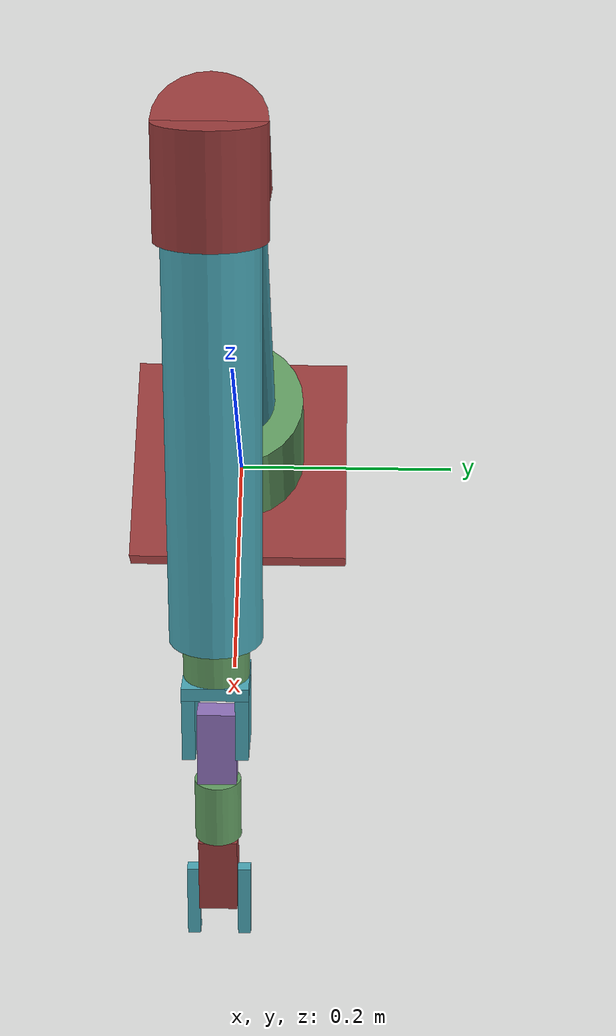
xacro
<?xml version="1.0"?>
<robot name="custom_rpp_zyz_robot" xmlns:xacro="http://www.ros.org/wiki/xacro">

  <xacro:include filename="common_properties.xacro"/>
  <xacro:include filename="robot_arm_gazebo.xacro"/>

  <xacro:property name="arm_length" value="0.3"/>
  <xacro:property name="arm_radius" value="0.035"/>

  <link name="world"/>

  <joint name="world_to_base" type="fixed">
    <parent link="world"/>
    <child link="base_link"/>
    <origin xyz="0 0 0" rpy="0 0 0"/>
  </joint>

  <!-- Base plate -->
  <link name="base_link">
    <visual>
      <origin xyz="0 0 0.01" rpy="0 0 0"/>
      <geometry>
        <box size="0.20 0.20 0.02"/>
      </geometry>
      <material name="dark_gray"/>
    </visual>
    <collision>
      <origin xyz="0 0 0.01" rpy="0 0 0"/>
      <geometry>
        <box size="0.20 0.20 0.02"/>
      </geometry>
    </collision>
    <xacro:box_inertia m="1.0" x="0.20" y="0.20" z="0.02" o_xyz="0 0 0.01" o_rpy="0 0 0"/>
  </link>

  <!-- Rotating motor base -->
  <link name="base_motor_link">
    <visual>
      <origin xyz="0 0 ${arm_length* 0.2}" rpy="0 0 0"/>
      <geometry>
        <cylinder radius="${arm_radius*(12/7)}" length="${arm_length* 0.4}"/>
      </geometry>
      <material name="orange"/>
    </visual>
    <collision>
      <origin xyz="0 0 ${arm_length* 0.2}" rpy="0 0 0"/>
      <geometry>
        <cylinder radius="${arm_radius*(12/7)}" length="${arm_length* 0.4}"/>
      </geometry>
    </collision>
    <xacro:cylinder_inertia m="1.0" r="${arm_radius*(12/7)}" h="${arm_length* 0.4}" o_xyz="0 0 ${arm_length* 0.2}" o_rpy="0 0 0"/>
  </link>

  <joint name="joint_base_yaw" type="revolute">
    <parent link="base_link"/>
    <child link="base_motor_link"/>
    <origin xyz="0 0 0.02" rpy="0 0 0"/>
    <axis xyz="0 0 1"/>
    <limit lower="${-pi}" upper="${pi}" effort="120" velocity="1.0"/>
    <dynamics damping="1.0" friction="0.2"/>
  </joint>

  <!-- Arm 1 outer tube -->

  <xacro:macro name="outer_arm" params="parfix">
    <link name="${parfix}_outer_link">
      <visual>
        <origin xyz="0 0 ${arm_length* 0.5}" rpy="0 0 0"/>
        <geometry>
          <cylinder radius="${arm_radius}" length="${arm_length}"/>
      </geometry>
        <material name="gray"/>
      </visual>
      <collision>
        <origin xyz="0 0 ${arm_length* 0.5}" rpy="0 0 0"/>
        <geometry>
          <cylinder radius="${arm_radius}" length="${arm_length}"/>
        </geometry>
      </collision>
      <xacro:cylinder_tube_inertia m="1.0" r_outer="${arm_radius}" r_inner="${arm_radius* (5/7)}" h="${arm_length}" o_xyz="0 0 ${arm_length* 0.5}" o_rpy="0 0 0"/>
    </link>
  </xacro:macro>

  <xacro:outer_arm parfix="arm1"/>

  <joint name="joint_arm1_outer_fixed" type="fixed">
    <parent link="base_motor_link"/>
    <child link="arm1_outer_link"/>
    <origin xyz="0 0 ${arm_length* 0.4}" rpy="0 0 0"/>
  </joint>

  <!-- Arm 1 inner telescopic rod -->
  <!-- Moves along Z -->
  <link name="arm1_inner_link">
    <visual>
      <origin xyz="0 0 ${arm_length* 0.5}" rpy="0 0 0"/>
      <geometry>
        <cylinder radius="${arm_radius* (5/7)}" length="${arm_length}"/>
      </geometry>
      <material name="blue"/>
    </visual>
    <collision>
      <origin xyz="0 0 ${arm_length* 0.5}" rpy="0 0 0"/>
      <geometry>
        <cylinder radius="${arm_radius* (5/7)}" length="${arm_length}"/>
      </geometry>
    </collision>
    <xacro:cylinder_tube_inertia m="1.0" r_outer="${arm_radius* (5/7)}" r_inner="${arm_radius* (4/7)}" h="${arm_length}" o_xyz="0 0 ${arm_length* 0.5}" o_rpy="0 0 0"/>
  </link>

  <joint name="joint_arm1_prismatic" type="prismatic">
    <parent link="arm1_outer_link"/>
    <child link="arm1_inner_link"/>
    <origin xyz="0 0 ${arm_length/10}" rpy="0 0 0"/>
    <axis xyz="0 0 1"/>
    <limit lower="0.0" upper="${arm_length* 0.85}" effort="400" velocity="0.10"/>
    <dynamics damping="8.0" friction="2.0"/>
  </joint>

  <!-- Fixed tilt -->
  <!-- Part 1/2-->
  <link name="tilt_link">
    <visual>
      <origin xyz="0 0 ${arm_length* 2/15}" rpy="0 0 0"/>
      <geometry>
        <cylinder radius="${arm_radius* 8/7}" length="${arm_length* 4/15}"/>
      </geometry>
      <material name="dark_gray"/>
    </visual>
    <collision>
      <origin xyz="0 0 ${arm_length* 2/15}" rpy="0 0 0"/>
      <geometry>
        <cylinder radius="${arm_radius* 8/7}" length="${arm_length* 4/15}"/>
      </geometry>
    </collision>
    <xacro:cylinder_inertia m="1.0" r="${arm_radius* 8/7}" h="${arm_length* 4/15}" o_xyz="0 0 ${arm_length* 2/15}" o_rpy="0 0 0"/>
  </link>

  <joint name="joint_fixed_tilt" type="fixed">
    <parent link="arm1_inner_link"/>
    <child link="tilt_link"/>
    <origin xyz="0 0 ${arm_length}" rpy="0 0 0"/>
  </joint>

  <!-- Fixed tilt by 135 degrees downward -->
  <!-- We use rotation about Y, Part 2/2-->
  <link name="tilt_135_link">
    <visual>
      <origin xyz="0 0 ${arm_length* 2/15}" rpy="0 0 0"/>
      <geometry>
        <cylinder radius="${arm_radius* 8/7}" length="${arm_length* 4/15}"/>
      </geometry>
      <material name="dark_gray"/>
    </visual>
    <collision>
      <origin xyz="0 0 ${arm_length* 2/15}" rpy="0 0 0"/>
      <geometry>
        <cylinder radius="${arm_radius* 8/7}" length="${arm_length* 4/15}"/>
      </geometry>
    </collision>
    <xacro:cylinder_inertia m="1.0" r="${arm_radius* 8/7}" h="${arm_length* 4/15}" o_xyz="0 0 ${arm_length* 2/15}" o_rpy="0 0 0"/>
  </link>

  <joint name="joint_fixed_135deg" type="fixed">
    <parent link="tilt_link"/>
    <child link="tilt_135_link"/>
    <origin xyz="0  0 ${arm_length* 4/15}" rpy="0 ${pi/(4/3)} 0"/>
  </joint>

  <!-- Arm 2 outer tube -->
  <!-- Axis is now tilted with the frame -->
  <xacro:outer_arm parfix="arm2"/>

  <joint name="joint_arm2_outer_fixed" type="fixed">
    <parent link="tilt_135_link"/>
    <child link="arm2_outer_link"/>
    <origin xyz="0 0 ${arm_length* 4/15}" rpy="0 0 0"/>
  </joint>

  <!-- Arm 2 inner telescopic rod -->
  <!-- Moves along local Z of arm2 -->
  <link name="arm2_inner_link">
    <visual>
      <origin xyz="0 0 ${arm_length* 0.5}" rpy="0 0 0"/>
      <geometry>
        <cylinder radius="${arm_radius* (5/7)}" length="${arm_length}"/>
      </geometry>
      <material name="orange"/>
    </visual>
    <collision>
      <origin xyz="0 0 ${arm_length* 0.5}" rpy="0 0 0"/>
      <geometry>
        <cylinder radius="${arm_radius* (5/7)}" length="${arm_length}"/>
      </geometry>
    </collision>
    <xacro:cylinder_tube_inertia m="1.0" r_outer="${arm_radius* (5/7)}" r_inner="${arm_radius* (4/7)}" h="${arm_length}" o_xyz="0 0 ${arm_length* 0.5}" o_rpy="0 0 0"/>
  </link>

  <joint name="joint_arm2_prismatic" type="prismatic">
    <parent link="arm2_outer_link"/>
    <child link="arm2_inner_link"/>
    <origin xyz="0 0 ${arm_length/10}" rpy="0 0 0"/>
    <axis xyz="0 0 1"/>
    <limit lower="0.0" upper="${arm_length* 0.85}" effort="400" velocity="0.10"/>
    <dynamics damping="8.0" friction="2.0"/>
  </joint>

  <!-- Wrist Z1 1/3-->
  <link name="wrist_z1_base_link">
    <visual>
      <origin xyz="0 0 0.005" rpy="0 0 0"/>
      <geometry>
        <box size="0.05 0.05 0.01"/>
      </geometry>
      <material name="gray"/>
    </visual>
    <collision>
      <origin xyz="0 0 0.005" rpy="0 0 0"/>
      <geometry>
        <box size="0.05 0.05 0.01"/>
      </geometry>
    </collision>
    <xacro:box_inertia m="0.5" x="0.05" y="0.05" z="0.01" o_xyz="0 0 0.005" o_rpy="0 0 0"/>
  </link>

  <joint name="joint_wrist_z1" type="revolute">
    <parent link="arm2_inner_link"/>
    <child link="wrist_z1_base_link"/>
    <origin xyz="0 0 ${arm_length}" rpy="0 0 0"/>
    <axis xyz="0 0 1"/>
    <limit lower="${-pi}" upper="${pi}" effort="80" velocity="1.0"/>
    <dynamics damping="1.5" friction="0.2"/>
  </joint>

  <!-- Wrist left Z1 2/3-->
  <xacro:macro name="wrist_z1_side" params="side">
     <link name="wrist_z1_${side}_link">
        <visual>
          <origin xyz="0 0 0.025" rpy="0 0 0"/>
          <geometry>
            <box size="0.05 0.01 0.05"/>
          </geometry>
          <material name="gray"/>
        </visual>
        <collision>
          <origin xyz="0 0 0.025" rpy="0 0 0"/>
          <geometry>
            <box size="0.05 0.01 0.05"/>
          </geometry>
        </collision>
        <xacro:box_inertia m="0.5" x="0.05" y="0.01" z="0.05" o_xyz="0 0 0.025" o_rpy="0 0 0"/>
      </link>
  </xacro:macro>

  <xacro:wrist_z1_side side="left"/>

  <joint name="joint_wrist_left_z1" type="fixed">
    <parent link="wrist_z1_base_link"/>
    <child link="wrist_z1_left_link"/>
    <origin xyz="0 0.02 0.01" rpy="0 0 0"/>
  </joint>

  <!-- Wrist right Z1 3/3-->
  <xacro:wrist_z1_side side="right"/>

  <joint name="joint_wrist_right_z1" type="fixed">
    <parent link="wrist_z1_base_link"/>
    <child link="wrist_z1_right_link"/>
    <origin xyz="0 -0.02 0.01" rpy="0 0 0"/>
  </joint>

  <!-- Wrist Y -->
  <link name="wrist_y_link">
    <visual>
      <origin xyz="0 0 0.02" rpy="0 0 0"/>
      <geometry>
        <box size="0.02 0.03 0.06"/>
      </geometry>
      <material name="blue"/>
    </visual>
    <collision>
      <origin xyz="0 0 0.02" rpy="0 0 0"/>
      <geometry>
        <box size="0.02 0.03 0.06"/>
      </geometry>
    </collision>
    <xacro:box_inertia m="0.5" x="0.02" y="0.03" z="0.06" o_xyz="0 0 0.02" o_rpy="0 0 0"/>
  </link>

  <joint name="joint_wrist_y" type="revolute">
    <parent link="wrist_z1_base_link"/>
    <child link="wrist_y_link"/>
    <origin xyz="0 0 0.04" rpy="0 0 0"/>
    <axis xyz="0 1 0"/>
    <limit lower="-1.5708" upper="1.5708" effort="80" velocity="1.0"/>
    <dynamics damping="1.5" friction="0.2"/>
  </joint>

  <!-- Wrist Z2 -->
  <link name="wrist_z2_link">
    <visual>
      <origin xyz="0 0 0.025" rpy="0 0 0"/>
      <geometry>
        <cylinder radius="0.018" length="0.05"/>
      </geometry>
      <material name="orange"/>
    </visual>
    <collision>
      <origin xyz="0 0 0.025" rpy="0 0 0"/>
      <geometry>
        <cylinder radius="0.018" length="0.05"/>
      </geometry>
    </collision>
    <xacro:cylinder_inertia m="1.0" r="0.018" h="0.05" o_xyz="0 0 0.025" o_rpy="0 0 0"/>
  </link>

  <joint name="joint_wrist_z2" type="revolute">
    <parent link="wrist_y_link"/>
    <child link="wrist_z2_link"/>
    <origin xyz="0 0 0.05" rpy="0 0 0"/>
    <axis xyz="0 0 1"/>
    <limit lower="-3.14159" upper="3.14159" effort="60" velocity="1.0"/>
    <dynamics damping="1.0" friction="0.2"/>
  </joint>

  <!-- Gripper base -->
  <link name="gripper_base_link">
    <visual>
      <origin xyz="0 0 0.03" rpy="0 0 0"/>
      <geometry>
        <box size="0.03 0.03 0.06"/>
      </geometry>
      <material name="dark_gray"/>
    </visual>
    <collision>
      <origin xyz="0 0 0.03" rpy="0 0 0"/>
      <geometry>
        <box size="0.03 0.03 0.06"/>
      </geometry>
    </collision>
    <xacro:box_inertia m="0.5" x="0.03" y="0.03" z="0.06" o_xyz="0 0 0.03" o_rpy="0 0 0"/>
  </link>

  <joint name="joint_gripper_fixed" type="fixed">
    <parent link="wrist_z2_link"/>
    <child link="gripper_base_link"/>
    <origin xyz="0 0 0.05" rpy="0 0 0"/>
  </joint>

  <!-- End-effector tip- 6cm forward from gripper_base frame -->
  <link name="ee_tip_link"/>
  <joint name="joint_ee_tip_fixed" type="fixed">
    <parent link="gripper_base_link"/>
    <child link="ee_tip_link"/>
    <origin xyz="0 0 0.06" rpy="0 0 0"/>
  </joint>

  <!-- Left finger -->
  <xacro:macro name="finger" params="side">
    <link name="${side}_finger_link">
      <visual>
        <origin xyz="0 0 0.03" rpy="0 0 0"/>
        <geometry>
          <box size="0.01 0.01 0.06"/>
        </geometry>
        <material name="gray"/>
      </visual>
      <collision>
        <origin xyz="0 0 0.03" rpy="0 0 0"/>
        <geometry>
          <box size="0.01 0.01 0.06"/>
        </geometry>
      </collision>
      <xacro:box_inertia m="0.3" x="0.01" y="0.01" z="0.06" o_xyz="0 0 0.03" o_rpy="0 0 0"/>
    </link>
  </xacro:macro>

  <xacro:finger side="left"/>

  <joint name="joint_left_finger_fixed" type="fixed">
    <parent link="gripper_base_link"/>
    <child link="left_finger_link"/>
    <origin xyz="0 0.02 0.03" rpy="0 0 0"/>
  </joint>

  <!-- Right finger -->
  <xacro:finger side="right"/>

  <joint name="joint_right_finger_fixed" type="fixed">
    <parent link="gripper_base_link"/>
    <child link="right_finger_link"/>
    <origin xyz="0 -0.02 0.03" rpy="0 0 0"/>
  </joint>

</robot>

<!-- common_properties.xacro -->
<robot xmlns:xacro="http://www.ros.org/wiki/xacro">

    <!-- Materials -->
    <material name="gray">
        <!-- Cyan -->
        <color rgba="0.30 0.68 0.74 1.0"/>
    </material>

    <material name="dark_gray">
        <!-- Reddish -->
        <color rgba="0.62 0.24 0.24 1.0"/>
    </material>

    <material name="blue">
        <!-- Lilac -->
        <color rgba="0.58 0.46 0.76 1.0"/>
    </material>

    <material name="orange">
        <!-- Green alternate shade -->
        <color rgba="0.40 0.64 0.40 1.0"/>
    </material>

    <!-- Inertial properties -->

    <xacro:macro name="box_inertia" params="m x y z o_xyz o_rpy">
        <inertial>
            <origin xyz="${o_xyz}" rpy="${o_rpy}"/>
            <mass value="${m}"/>
            <inertia ixx="${(1/12)*m*(y**2 + z**2)}" ixy="0" ixz="0"
                        iyy="${(1/12)*m*(x**2 + z**2)}" iyz="0"
                        izz="${(1/12)*m*(x**2 + y**2)}"/>
        </inertial>
    </xacro:macro>

    <xacro:macro name="cylinder_inertia" params="m r h o_xyz o_rpy">
        <inertial>
            <origin xyz="${o_xyz}" rpy="${o_rpy}"/>
            <mass value="${m}"/>
            <inertia ixx="${(1/12)*m*(3*r**2 + h**2)}" ixy="0" ixz="0"
                        iyy="${(1/12)*m*(3*r**2 + h**2)}" iyz="0"
                        izz="${(1/2)*m*r**2}"/>
        </inertial>
    </xacro:macro>

    <xacro:macro name="cylinder_tube_inertia" params="m r_outer r_inner h o_xyz o_rpy">
        <inertial>
            <origin xyz="${o_xyz}" rpy="${o_rpy}"/>
            <mass value="${m}"/>
            <inertia ixx="${(1/12)*m*(3*(r_outer**2 + r_inner**2) + h**2)}" ixy="0" ixz="0"
                        iyy="${(1/12)*m*(3*(r_outer**2 + r_inner**2) + h**2)}" iyz="0"
                        izz="${(1/2)*m*(r_outer**2 + r_inner**2)}"/>
        </inertial>
    </xacro:macro>
</robot>
